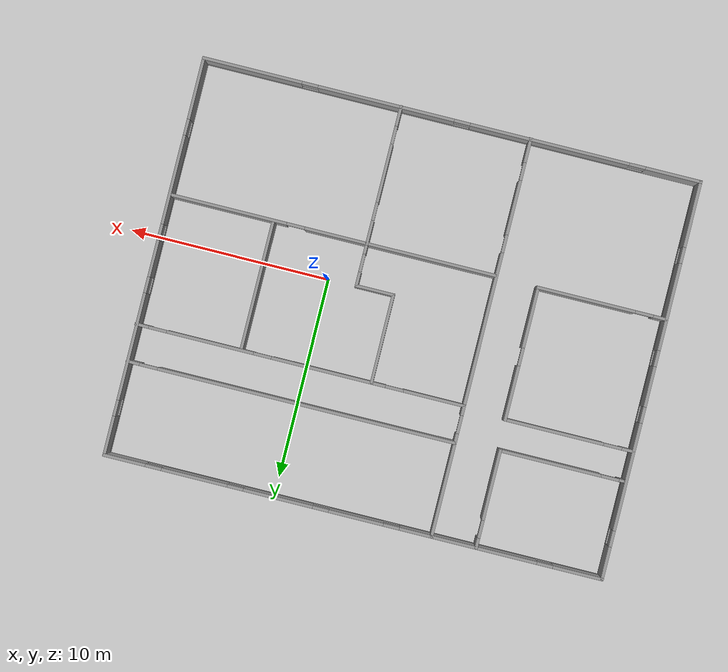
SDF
<sdf version="1.4">
 <world name="default">
  <physics type="ode">
   <gravity>0 0 -9.81</gravity>
   <ode>
    <solver><type>quick</type><iters>20</iters><sor>1.0</sor></solver>
    <constraints>
     <cfm>0.0</cfm>
     <erp>0.2</erp>
     <contact_max_correcting_vel>100.0</contact_max_correcting_vel>
     <contact_surface_layer>0.0</contact_surface_layer>
    </constraints>
   </ode>
   <real_time_update_rate>1000</real_time_update_rate>
   <max_step_size>0.001</max_step_size>
  </physics>
  <light name="sun" type="directional">
   <pose>0 0 10 0 -0 0</pose>
   <diffuse>0.8 0.8 0.8 1</diffuse>
   <specular>0.2 0.2 0.2 1</specular>
   <attenuation>
    <range>1000</range>
    <constant>0.9</constant>
    <linear>0.01</linear>
    <quadratic>0.001</quadratic>
   </attenuation>
   <direction>-0.5 0.1 -0.9</direction>
  </light>
  <model name="ground_plane">
   <static>1</static>
   <link name="link">
    <collision name="collision">
     <geometry><plane><normal>0 0 1</normal><size>100 100</size></plane></geometry>
     <surface><friction><ode><mu>100</mu><mu2>50</mu2></ode></friction></surface>
    </collision>
    <visual name="visual">
     <cast_shadows>0</cast_shadows>
     <geometry><plane><normal>0 0 1</normal><size>100 100</size></plane></geometry>
     <material>
      <script><uri>file://media/materials/scripts/gazebo.material</uri><name>Gazebo/Grey</name></script>
     </material>
    </visual>
    <velocity_decay><linear>0</linear><angular>0</angular></velocity_decay>
   </link>
  </model>
  <scene><ambient>0.4 0.4 0.4 1</ambient><background>0.7 0.7 0.7 1</background><shadows>1</shadows></scene>
  <spherical_coordinates>
   <surface_model>EARTH_WGS84</surface_model>
   <latitude_deg>0</latitude_deg>
   <longitude_deg>0</longitude_deg>
   <elevation>0</elevation>
   <heading_deg>0</heading_deg>
  </spherical_coordinates>
  <model name="RoomWorld">
   <pose>-4 1 0 0 -0 0</pose>
   <link name="Wall_12">
    <pose>-0.015924 -9.9164 0 0 -0 0</pose>
    <visual name="Wall_12_Visual_0">
     <pose>-11.0832 0 1.25 0 -0 0</pose>
     <geometry><box><size>2.83352 0.15 2.5</size></box></geometry>
     <material>
      <script><uri>file://media/materials/scripts/gazebo.material</uri><name>Gazebo/Grey</name></script>
      <ambient>1 1 1 1</ambient>
     </material>
    </visual>
    <collision name="Wall_12_Collision_0">
     <geometry><box><size>2.83352 0.15 2.5</size></box></geometry>
     <pose>-11.0832 0 1.25 0 -0 0</pose>
    </collision>
    <visual name="Wall_12_Visual_1">
     <pose>1.41676 0 0.25 0 -0 0</pose>
     <geometry><box><size>22.1665 0.15 0.5</size></box></geometry>
     <material>
      <script><uri>file://media/materials/scripts/gazebo.material</uri><name>Gazebo/Grey</name></script>
      <ambient>1 1 1 1</ambient>
     </material>
    </visual>
    <collision name="Wall_12_Collision_1">
     <geometry><box><size>22.1665 0.15 0.5</size></box></geometry>
     <pose>1.41676 0 0.25 0 -0 0</pose>
    </collision>
    <visual name="Wall_12_Visual_2">
     <pose>-4.88323 0 1.5 0 -0 0</pose>
     <geometry><box><size>7.9665 0.15 2</size></box></geometry>
     <material>
      <script><uri>file://media/materials/scripts/gazebo.material</uri><name>Gazebo/Grey</name></script>
      <ambient>1 1 1 1</ambient>
     </material>
    </visual>
    <collision name="Wall_12_Collision_2">
     <geometry><box><size>7.9665 0.15 2</size></box></geometry>
     <pose>-4.88323 0 1.5 0 -0 0</pose>
    </collision>
    <visual name="Wall_12_Visual_3">
     <pose>3.30501 0 1.5 0 -0 0</pose>
     <geometry><box><size>6.80997 0.15 2</size></box></geometry>
     <material>
      <script><uri>file://media/materials/scripts/gazebo.material</uri><name>Gazebo/Grey</name></script>
      <ambient>1 1 1 1</ambient>
     </material>
    </visual>
    <collision name="Wall_12_Collision_3">
     <geometry><box><size>6.80997 0.15 2</size></box></geometry>
     <pose>3.30501 0 1.5 0 -0 0</pose>
    </collision>
    <visual name="Wall_12_Visual_4">
     <pose>10.005 0 1.5 0 -0 0</pose>
     <geometry><box><size>4.99001 0.15 2</size></box></geometry>
     <material>
      <script><uri>file://media/materials/scripts/gazebo.material</uri><name>Gazebo/Grey</name></script>
      <ambient>1 1 1 1</ambient>
     </material>
    </visual>
    <collision name="Wall_12_Collision_4">
     <geometry><box><size>4.99001 0.15 2</size></box></geometry>
     <pose>10.005 0 1.5 0 -0 0</pose>
    </collision>
    <visual name="Wall_12_Visual_5">
     <pose>-9.26648 0 1.9 0 -0 0</pose>
     <geometry><box><size>0.8 0.15 1.2</size></box></geometry>
     <material>
      <script><uri>file://media/materials/scripts/gazebo.material</uri><name>Gazebo/Grey</name></script>
      <ambient>1 1 1 1</ambient>
     </material>
    </visual>
    <collision name="Wall_12_Collision_5">
     <geometry><box><size>0.8 0.15 1.2</size></box></geometry>
     <pose>-9.26648 0 1.9 0 -0 0</pose>
    </collision>
    <visual name="Wall_12_Visual_6">
     <pose>-0.499978 0 1.9 0 -0 0</pose>
     <geometry><box><size>0.8 0.15 1.2</size></box></geometry>
     <material>
      <script><uri>file://media/materials/scripts/gazebo.material</uri><name>Gazebo/Grey</name></script>
      <ambient>1 1 1 1</ambient>
     </material>
    </visual>
    <collision name="Wall_12_Collision_6">
     <geometry><box><size>0.8 0.15 1.2</size></box></geometry>
     <pose>-0.499978 0 1.9 0 -0 0</pose>
    </collision>
    <visual name="Wall_12_Visual_7">
     <pose>7.10999 0 1.9 0 -0 0</pose>
     <geometry><box><size>0.8 0.15 1.2</size></box></geometry>
     <material>
      <script><uri>file://media/materials/scripts/gazebo.material</uri><name>Gazebo/Grey</name></script>
      <ambient>1 1 1 1</ambient>
     </material>
    </visual>
    <collision name="Wall_12_Collision_7">
     <geometry><box><size>0.8 0.15 1.2</size></box></geometry>
     <pose>7.10999 0 1.9 0 -0 0</pose>
    </collision>
    <velocity_decay><linear>0</linear><angular>0</angular></velocity_decay>
   </link>
   <link name="Wall_13">
    <pose>12.4091 0.008604 0 0 -0 1.5708</pose>
    <visual name="Wall_13_Visual_0">
     <pose>-8.43232 0 1.25 0 -0 0</pose>
     <geometry><box><size>3.13536 0.15 2.5</size></box></geometry>
     <material>
      <script><uri>file://media/materials/scripts/gazebo.material</uri><name>Gazebo/Grey</name></script>
      <ambient>1 1 1 1</ambient>
     </material>
    </visual>
    <collision name="Wall_13_Collision_0">
     <geometry><box><size>3.13536 0.15 2.5</size></box></geometry>
     <pose>-8.43232 0 1.25 0 -0 0</pose>
    </collision>
    <visual name="Wall_13_Visual_1">
     <pose>1.56768 0 0.25 0 -0 0</pose>
     <geometry><box><size>16.8646 0.15 0.5</size></box></geometry>
     <material>
      <script><uri>file://media/materials/scripts/gazebo.material</uri><name>Gazebo/Grey</name></script>
      <ambient>1 1 1 1</ambient>
     </material>
    </visual>
    <collision name="Wall_13_Collision_1">
     <geometry><box><size>16.8646 0.15 0.5</size></box></geometry>
     <pose>1.56768 0 0.25 0 -0 0</pose>
    </collision>
    <visual name="Wall_13_Visual_2">
     <pose>-3.83932 0 1.5 0 -0 0</pose>
     <geometry><box><size>4.45065 0.15 2</size></box></geometry>
     <material>
      <script><uri>file://media/materials/scripts/gazebo.material</uri><name>Gazebo/Grey</name></script>
      <ambient>1 1 1 1</ambient>
     </material>
    </visual>
    <collision name="Wall_13_Collision_2">
     <geometry><box><size>4.45065 0.15 2</size></box></geometry>
     <pose>-3.83932 0 1.5 0 -0 0</pose>
    </collision>
    <visual name="Wall_13_Visual_3">
     <pose>0.104448 0 1.5 0 -0 0</pose>
     <geometry><box><size>1.83689 0.15 2</size></box></geometry>
     <material>
      <script><uri>file://media/materials/scripts/gazebo.material</uri><name>Gazebo/Grey</name></script>
      <ambient>1 1 1 1</ambient>
     </material>
    </visual>
    <collision name="Wall_13_Collision_3">
     <geometry><box><size>1.83689 0.15 2</size></box></geometry>
     <pose>0.104448 0 1.5 0 -0 0</pose>
    </collision>
    <visual name="Wall_13_Visual_4">
     <pose>4.49926 0 1.5 0 -0 0</pose>
     <geometry><box><size>5.35274 0.15 2</size></box></geometry>
     <material>
      <script><uri>file://media/materials/scripts/gazebo.material</uri><name>Gazebo/Grey</name></script>
      <ambient>1 1 1 1</ambient>
     </material>
    </visual>
    <collision name="Wall_13_Collision_4">
     <geometry><box><size>5.35274 0.15 2</size></box></geometry>
     <pose>4.49926 0 1.5 0 -0 0</pose>
    </collision>
    <visual name="Wall_13_Visual_5">
     <pose>8.98782 0 1.5 0 -0 0</pose>
     <geometry><box><size>2.02437 0.15 2</size></box></geometry>
     <material>
      <script><uri>file://media/materials/scripts/gazebo.material</uri><name>Gazebo/Grey</name></script>
      <ambient>1 1 1 1</ambient>
     </material>
    </visual>
    <collision name="Wall_13_Collision_5">
     <geometry><box><size>2.02437 0.15 2</size></box></geometry>
     <pose>8.98782 0 1.5 0 -0 0</pose>
    </collision>
    <visual name="Wall_13_Visual_6">
     <pose>-6.46464 0 1.9 0 -0 0</pose>
     <geometry><box><size>0.8 0.15 1.2</size></box></geometry>
     <material>
      <script><uri>file://media/materials/scripts/gazebo.material</uri><name>Gazebo/Grey</name></script>
      <ambient>1 1 1 1</ambient>
     </material>
    </visual>
    <collision name="Wall_13_Collision_6">
     <geometry><box><size>0.8 0.15 1.2</size></box></geometry>
     <pose>-6.46464 0 1.9 0 -0 0</pose>
    </collision>
    <visual name="Wall_13_Visual_7">
     <pose>-1.214 0 1.9 0 -0 0</pose>
     <geometry><box><size>0.8 0.15 1.2</size></box></geometry>
     <material>
      <script><uri>file://media/materials/scripts/gazebo.material</uri><name>Gazebo/Grey</name></script>
      <ambient>1 1 1 1</ambient>
     </material>
    </visual>
    <collision name="Wall_13_Collision_7">
     <geometry><box><size>0.8 0.15 1.2</size></box></geometry>
     <pose>-1.214 0 1.9 0 -0 0</pose>
    </collision>
    <visual name="Wall_13_Visual_8">
     <pose>1.42289 0 1.9 0 -0 0</pose>
     <geometry><box><size>0.8 0.15 1.2</size></box></geometry>
     <material>
      <script><uri>file://media/materials/scripts/gazebo.material</uri><name>Gazebo/Grey</name></script>
      <ambient>1 1 1 1</ambient>
     </material>
    </visual>
    <collision name="Wall_13_Collision_8">
     <geometry><box><size>0.8 0.15 1.2</size></box></geometry>
     <pose>1.42289 0 1.9 0 -0 0</pose>
    </collision>
    <visual name="Wall_13_Visual_9">
     <pose>7.57563 0 1.9 0 -0 0</pose>
     <geometry><box><size>0.8 0.15 1.2</size></box></geometry>
     <material>
      <script><uri>file://media/materials/scripts/gazebo.material</uri><name>Gazebo/Grey</name></script>
      <ambient>1 1 1 1</ambient>
     </material>
    </visual>
    <collision name="Wall_13_Collision_9">
     <geometry><box><size>0.8 0.15 1.2</size></box></geometry>
     <pose>7.57563 0 1.9 0 -0 0</pose>
    </collision>
    <velocity_decay><linear>0</linear><angular>0</angular></velocity_decay>
   </link>
   <link name="Wall_14">
    <pose>-0.015924 9.9336 0 0 -0 3.14159</pose>
    <visual name="Wall_14_Visual_0">
     <pose>-11.4391 0 1.25 0 -0 0</pose>
     <geometry><box><size>2.12181 0.15 2.5</size></box></geometry>
     <material>
      <script><uri>file://media/materials/scripts/gazebo.material</uri><name>Gazebo/Grey</name></script>
      <ambient>1 1 1 1</ambient>
     </material>
    </visual>
    <collision name="Wall_14_Collision_0">
     <geometry><box><size>2.12181 0.15 2.5</size></box></geometry>
     <pose>-11.4391 0 1.25 0 -0 0</pose>
    </collision>
    <visual name="Wall_14_Visual_1">
     <pose>1.06091 0 0.25 0 -0 0</pose>
     <geometry><box><size>22.8782 0.15 0.5</size></box></geometry>
     <material>
      <script><uri>file://media/materials/scripts/gazebo.material</uri><name>Gazebo/Grey</name></script>
      <ambient>1 1 1 1</ambient>
     </material>
    </visual>
    <collision name="Wall_14_Collision_1">
     <geometry><box><size>22.8782 0.15 0.5</size></box></geometry>
     <pose>1.06091 0 0.25 0 -0 0</pose>
    </collision>
    <visual name="Wall_14_Visual_2">
     <pose>-7.93113 0 1.5 0 -0 0</pose>
     <geometry><box><size>3.29412 0.15 2</size></box></geometry>
     <material>
      <script><uri>file://media/materials/scripts/gazebo.material</uri><name>Gazebo/Grey</name></script>
      <ambient>1 1 1 1</ambient>
     </material>
    </visual>
    <collision name="Wall_14_Collision_2">
     <geometry><box><size>3.29412 0.15 2</size></box></geometry>
     <pose>-7.93113 0 1.5 0 -0 0</pose>
    </collision>
    <visual name="Wall_14_Visual_3">
     <pose>-3.75605 0 1.5 0 -0 0</pose>
     <geometry><box><size>3.45603 0.15 2</size></box></geometry>
     <material>
      <script><uri>file://media/materials/scripts/gazebo.material</uri><name>Gazebo/Grey</name></script>
      <ambient>1 1 1 1</ambient>
     </material>
    </visual>
    <collision name="Wall_14_Collision_3">
     <geometry><box><size>3.45603 0.15 2</size></box></geometry>
     <pose>-3.75605 0 1.5 0 -0 0</pose>
    </collision>
    <visual name="Wall_14_Visual_4">
     <pose>0.141454 0 1.5 0 -0 0</pose>
     <geometry><box><size>2.73898 0.15 2</size></box></geometry>
     <material>
      <script><uri>file://media/materials/scripts/gazebo.material</uri><name>Gazebo/Grey</name></script>
      <ambient>1 1 1 1</ambient>
     </material>
    </visual>
    <collision name="Wall_14_Collision_4">
     <geometry><box><size>2.73898 0.15 2</size></box></geometry>
     <pose>0.141454 0 1.5 0 -0 0</pose>
    </collision>
    <visual name="Wall_14_Visual_5">
     <pose>5.73906 0 1.5 0 -0 0</pose>
     <geometry><box><size>6.85623 0.15 2</size></box></geometry>
     <material>
      <script><uri>file://media/materials/scripts/gazebo.material</uri><name>Gazebo/Grey</name></script>
      <ambient>1 1 1 1</ambient>
     </material>
    </visual>
    <collision name="Wall_14_Collision_5">
     <geometry><box><size>6.85623 0.15 2</size></box></geometry>
     <pose>5.73906 0 1.5 0 -0 0</pose>
    </collision>
    <visual name="Wall_14_Visual_6">
     <pose>11.2336 0 1.5 0 -0 0</pose>
     <geometry><box><size>2.53282 0.15 2</size></box></geometry>
     <material>
      <script><uri>file://media/materials/scripts/gazebo.material</uri><name>Gazebo/Grey</name></script>
      <ambient>1 1 1 1</ambient>
     </material>
    </visual>
    <collision name="Wall_14_Collision_6">
     <geometry><box><size>2.53282 0.15 2</size></box></geometry>
     <pose>11.2336 0 1.5 0 -0 0</pose>
    </collision>
    <visual name="Wall_14_Visual_7">
     <pose>-9.97819 0 1.9 0 -0 0</pose>
     <geometry><box><size>0.8 0.15 1.2</size></box></geometry>
     <material>
      <script><uri>file://media/materials/scripts/gazebo.material</uri><name>Gazebo/Grey</name></script>
      <ambient>1 1 1 1</ambient>
     </material>
    </visual>
    <collision name="Wall_14_Collision_7">
     <geometry><box><size>0.8 0.15 1.2</size></box></geometry>
     <pose>-9.97819 0 1.9 0 -0 0</pose>
    </collision>
    <visual name="Wall_14_Visual_8">
     <pose>-5.88407 0 1.9 0 -0 0</pose>
     <geometry><box><size>0.8 0.15 1.2</size></box></geometry>
     <material>
      <script><uri>file://media/materials/scripts/gazebo.material</uri><name>Gazebo/Grey</name></script>
      <ambient>1 1 1 1</ambient>
     </material>
    </visual>
    <collision name="Wall_14_Collision_8">
     <geometry><box><size>0.8 0.15 1.2</size></box></geometry>
     <pose>-5.88407 0 1.9 0 -0 0</pose>
    </collision>
    <visual name="Wall_14_Visual_9">
     <pose>-1.62804 0 1.9 0 -0 0</pose>
     <geometry><box><size>0.8 0.15 1.2</size></box></geometry>
     <material>
      <script><uri>file://media/materials/scripts/gazebo.material</uri><name>Gazebo/Grey</name></script>
      <ambient>1 1 1 1</ambient>
     </material>
    </visual>
    <collision name="Wall_14_Collision_9">
     <geometry><box><size>0.8 0.15 1.2</size></box></geometry>
     <pose>-1.62804 0 1.9 0 -0 0</pose>
    </collision>
    <visual name="Wall_14_Visual_10">
     <pose>1.91094 0 1.9 0 -0 0</pose>
     <geometry><box><size>0.8 0.15 1.2</size></box></geometry>
     <material>
      <script><uri>file://media/materials/scripts/gazebo.material</uri><name>Gazebo/Grey</name></script>
      <ambient>1 1 1 1</ambient>
     </material>
    </visual>
    <collision name="Wall_14_Collision_10">
     <geometry><box><size>0.8 0.15 1.2</size></box></geometry>
     <pose>1.91094 0 1.9 0 -0 0</pose>
    </collision>
    <visual name="Wall_14_Visual_11">
     <pose>9.56718 0 1.9 0 -0 0</pose>
     <geometry><box><size>0.8 0.15 1.2</size></box></geometry>
     <material>
      <script><uri>file://media/materials/scripts/gazebo.material</uri><name>Gazebo/Grey</name></script>
      <ambient>1 1 1 1</ambient>
     </material>
    </visual>
    <collision name="Wall_14_Collision_11">
     <geometry><box><size>0.8 0.15 1.2</size></box></geometry>
     <pose>9.56718 0 1.9 0 -0 0</pose>
    </collision>
    <velocity_decay><linear>0</linear><angular>0</angular></velocity_decay>
   </link>
   <link name="Wall_15">
    <pose>-12.4409 0.008604 0 0 0 -1.5708</pose>
    <visual name="Wall_15_Visual_0">
     <pose>-9.14973 0 1.25 0 -0 0</pose>
     <geometry><box><size>1.70054 0.15 2.5</size></box></geometry>
     <material>
      <script><uri>file://media/materials/scripts/gazebo.material</uri><name>Gazebo/Grey</name></script>
      <ambient>1 1 1 1</ambient>
     </material>
    </visual>
    <collision name="Wall_15_Collision_0">
     <geometry><box><size>1.70054 0.15 2.5</size></box></geometry>
     <pose>-9.14973 0 1.25 0 -0 0</pose>
    </collision>
    <visual name="Wall_15_Visual_1">
     <pose>0.850269 0 0.25 0 -0 0</pose>
     <geometry><box><size>18.2995 0.15 0.5</size></box></geometry>
     <material>
      <script><uri>file://media/materials/scripts/gazebo.material</uri><name>Gazebo/Grey</name></script>
      <ambient>1 1 1 1</ambient>
     </material>
    </visual>
    <collision name="Wall_15_Collision_1">
     <geometry><box><size>18.2995 0.15 0.5</size></box></geometry>
     <pose>0.850269 0 0.25 0 -0 0</pose>
    </collision>
    <visual name="Wall_15_Visual_2">
     <pose>-4.81153 0 1.5 0 -0 0</pose>
     <geometry><box><size>5.37587 0.15 2</size></box></geometry>
     <material>
      <script><uri>file://media/materials/scripts/gazebo.material</uri><name>Gazebo/Grey</name></script>
      <ambient>1 1 1 1</ambient>
     </material>
    </visual>
    <collision name="Wall_15_Collision_2">
     <geometry><box><size>5.37587 0.15 2</size></box></geometry>
     <pose>-4.81153 0 1.5 0 -0 0</pose>
    </collision>
    <visual name="Wall_15_Visual_3">
     <pose>-0.312623 0 1.5 0 -0 0</pose>
     <geometry><box><size>2.02193 0.15 2</size></box></geometry>
     <material>
      <script><uri>file://media/materials/scripts/gazebo.material</uri><name>Gazebo/Grey</name></script>
      <ambient>1 1 1 1</ambient>
     </material>
    </visual>
    <collision name="Wall_15_Collision_3">
     <geometry><box><size>2.02193 0.15 2</size></box></geometry>
     <pose>-0.312623 0 1.5 0 -0 0</pose>
    </collision>
    <visual name="Wall_15_Visual_4">
     <pose>3.67741 0 1.5 0 -0 0</pose>
     <geometry><box><size>4.35813 0.15 2</size></box></geometry>
     <material>
      <script><uri>file://media/materials/scripts/gazebo.material</uri><name>Gazebo/Grey</name></script>
      <ambient>1 1 1 1</ambient>
     </material>
    </visual>
    <collision name="Wall_15_Collision_4">
     <geometry><box><size>4.35813 0.15 2</size></box></geometry>
     <pose>3.67741 0 1.5 0 -0 0</pose>
    </collision>
    <visual name="Wall_15_Visual_5">
     <pose>8.32823 0 1.5 0 -0 0</pose>
     <geometry><box><size>3.34353 0.15 2</size></box></geometry>
     <material>
      <script><uri>file://media/materials/scripts/gazebo.material</uri><name>Gazebo/Grey</name></script>
      <ambient>1 1 1 1</ambient>
     </material>
    </visual>
    <collision name="Wall_15_Collision_5">
     <geometry><box><size>3.34353 0.15 2</size></box></geometry>
     <pose>8.32823 0 1.5 0 -0 0</pose>
    </collision>
    <visual name="Wall_15_Visual_6">
     <pose>-7.89946 0 1.9 0 -0 0</pose>
     <geometry><box><size>0.8 0.15 1.2</size></box></geometry>
     <material>
      <script><uri>file://media/materials/scripts/gazebo.material</uri><name>Gazebo/Grey</name></script>
      <ambient>1 1 1 1</ambient>
     </material>
    </visual>
    <collision name="Wall_15_Collision_6">
     <geometry><box><size>0.8 0.15 1.2</size></box></geometry>
     <pose>-7.89946 0 1.9 0 -0 0</pose>
    </collision>
    <visual name="Wall_15_Visual_7">
     <pose>-1.72359 0 1.9 0 -0 0</pose>
     <geometry><box><size>0.8 0.15 1.2</size></box></geometry>
     <material>
      <script><uri>file://media/materials/scripts/gazebo.material</uri><name>Gazebo/Grey</name></script>
      <ambient>1 1 1 1</ambient>
     </material>
    </visual>
    <collision name="Wall_15_Collision_7">
     <geometry><box><size>0.8 0.15 1.2</size></box></geometry>
     <pose>-1.72359 0 1.9 0 -0 0</pose>
    </collision>
    <visual name="Wall_15_Visual_8">
     <pose>1.09834 0 1.9 0 -0 0</pose>
     <geometry><box><size>0.8 0.15 1.2</size></box></geometry>
     <material>
      <script><uri>file://media/materials/scripts/gazebo.material</uri><name>Gazebo/Grey</name></script>
      <ambient>1 1 1 1</ambient>
     </material>
    </visual>
    <collision name="Wall_15_Collision_8">
     <geometry><box><size>0.8 0.15 1.2</size></box></geometry>
     <pose>1.09834 0 1.9 0 -0 0</pose>
    </collision>
    <visual name="Wall_15_Visual_9">
     <pose>6.25647 0 1.9 0 -0 0</pose>
     <geometry><box><size>0.8 0.15 1.2</size></box></geometry>
     <material>
      <script><uri>file://media/materials/scripts/gazebo.material</uri><name>Gazebo/Grey</name></script>
      <ambient>1 1 1 1</ambient>
     </material>
    </visual>
    <collision name="Wall_15_Collision_9">
     <geometry><box><size>0.8 0.15 1.2</size></box></geometry>
     <pose>6.25647 0 1.9 0 -0 0</pose>
    </collision>
    <velocity_decay><linear>0</linear><angular>0</angular></velocity_decay>
   </link>
   <link name="Wall_17">
    <pose>-9.20541 3.56611 0 0 -0 0</pose>
    <visual name="Wall_17_Visual_0">
     <pose>-2.94296 0 1.25 0 -0 0</pose>
     <geometry><box><size>0.614084 0.15 2.5</size></box></geometry>
     <material>
      <script><uri>file://media/materials/scripts/gazebo.material</uri><name>Gazebo/Grey</name></script>
      <ambient>1 1 1 1</ambient>
     </material>
    </visual>
    <collision name="Wall_17_Collision_0">
     <geometry><box><size>0.614084 0.15 2.5</size></box></geometry>
     <pose>-2.94296 0 1.25 0 -0 0</pose>
    </collision>
    <visual name="Wall_17_Visual_1">
     <pose>0.757042 0 1.25 0 -0 0</pose>
     <geometry><box><size>4.98592 0.15 2.5</size></box></geometry>
     <material>
      <script><uri>file://media/materials/scripts/gazebo.material</uri><name>Gazebo/Grey</name></script>
      <ambient>1 1 1 1</ambient>
     </material>
    </visual>
    <collision name="Wall_17_Collision_1">
     <geometry><box><size>4.98592 0.15 2.5</size></box></geometry>
     <pose>0.757042 0 1.25 0 -0 0</pose>
    </collision>
    <visual name="Wall_17_Visual_2">
     <pose>-2.18592 0 2.25 0 -0 0</pose>
     <geometry><box><size>0.9 0.15 0.5</size></box></geometry>
     <material>
      <script><uri>file://media/materials/scripts/gazebo.material</uri><name>Gazebo/Grey</name></script>
      <ambient>1 1 1 1</ambient>
     </material>
    </visual>
    <collision name="Wall_17_Collision_2">
     <geometry><box><size>0.9 0.15 0.5</size></box></geometry>
     <pose>-2.18592 0 2.25 0 -0 0</pose>
    </collision>
    <velocity_decay><linear>0</linear><angular>0</angular></velocity_decay>
   </link>
   <link name="Wall_18">
    <pose>-6.03041 0.266112 0 0 0 -1.5708</pose>
    <visual name="Wall_18_Visual_0">
     <pose>-1.99435 0 1.25 0 -0 0</pose>
     <geometry><box><size>2.7613 0.15 2.5</size></box></geometry>
     <material>
      <script><uri>file://media/materials/scripts/gazebo.material</uri><name>Gazebo/Grey</name></script>
      <ambient>1 1 1 1</ambient>
     </material>
    </visual>
    <collision name="Wall_18_Collision_0">
     <geometry><box><size>2.7613 0.15 2.5</size></box></geometry>
     <pose>-1.99435 0 1.25 0 -0 0</pose>
    </collision>
    <visual name="Wall_18_Visual_1">
     <pose>1.83065 0 1.25 0 -0 0</pose>
     <geometry><box><size>3.0887 0.15 2.5</size></box></geometry>
     <material>
      <script><uri>file://media/materials/scripts/gazebo.material</uri><name>Gazebo/Grey</name></script>
      <ambient>1 1 1 1</ambient>
     </material>
    </visual>
    <collision name="Wall_18_Collision_1">
     <geometry><box><size>3.0887 0.15 2.5</size></box></geometry>
     <pose>1.83065 0 1.25 0 -0 0</pose>
    </collision>
    <visual name="Wall_18_Visual_2">
     <pose>-0.163703 0 2.25 0 -0 0</pose>
     <geometry><box><size>0.9 0.15 0.5</size></box></geometry>
     <material>
      <script><uri>file://media/materials/scripts/gazebo.material</uri><name>Gazebo/Grey</name></script>
      <ambient>1 1 1 1</ambient>
     </material>
    </visual>
    <collision name="Wall_18_Collision_2">
     <geometry><box><size>0.9 0.15 0.5</size></box></geometry>
     <pose>-0.163703 0 2.25 0 -0 0</pose>
    </collision>
    <velocity_decay><linear>0</linear><angular>0</angular></velocity_decay>
   </link>
   <link name="Wall_19">
    <pose>-9.20541 -3.03389 0 0 -0 3.14159</pose>
    <visual name="Wall_19_Visual_0">
     <pose>-0.787212 0 1.25 0 -0 0</pose>
     <geometry><box><size>4.92558 0.15 2.5</size></box></geometry>
     <material>
      <script><uri>file://media/materials/scripts/gazebo.material</uri><name>Gazebo/Grey</name></script>
      <ambient>1 1 1 1</ambient>
     </material>
    </visual>
    <collision name="Wall_19_Collision_0">
     <geometry><box><size>4.92558 0.15 2.5</size></box></geometry>
     <pose>-0.787212 0 1.25 0 -0 0</pose>
    </collision>
    <visual name="Wall_19_Visual_1">
     <pose>2.91279 0 1.25 0 -0 0</pose>
     <geometry><box><size>0.674425 0.15 2.5</size></box></geometry>
     <material>
      <script><uri>file://media/materials/scripts/gazebo.material</uri><name>Gazebo/Grey</name></script>
      <ambient>1 1 1 1</ambient>
     </material>
    </visual>
    <collision name="Wall_19_Collision_1">
     <geometry><box><size>0.674425 0.15 2.5</size></box></geometry>
     <pose>2.91279 0 1.25 0 -0 0</pose>
    </collision>
    <visual name="Wall_19_Visual_2">
     <pose>2.12557 0 2.25 0 -0 0</pose>
     <geometry><box><size>0.9 0.15 0.5</size></box></geometry>
     <material>
      <script><uri>file://media/materials/scripts/gazebo.material</uri><name>Gazebo/Grey</name></script>
      <ambient>1 1 1 1</ambient>
     </material>
    </visual>
    <collision name="Wall_19_Collision_2">
     <geometry><box><size>0.9 0.15 0.5</size></box></geometry>
     <pose>2.12557 0 2.25 0 -0 0</pose>
    </collision>
    <velocity_decay><linear>0</linear><angular>0</angular></velocity_decay>
   </link>
   <link name="Wall_21">
    <pose>-6.15827 7.50203 0 0 0 -1.5708</pose>
    <visual name="Wall_21_Visual_0">
     <pose>-2.22308 0 1.25 0 -0 0</pose>
     <geometry><box><size>0.553832 0.15 2.5</size></box></geometry>
     <material>
      <script><uri>file://media/materials/scripts/gazebo.material</uri><name>Gazebo/Grey</name></script>
      <ambient>1 1 1 1</ambient>
     </material>
    </visual>
    <collision name="Wall_21_Collision_0">
     <geometry><box><size>0.553832 0.15 2.5</size></box></geometry>
     <pose>-2.22308 0 1.25 0 -0 0</pose>
    </collision>
    <visual name="Wall_21_Visual_1">
     <pose>0.726916 0 1.25 0 -0 0</pose>
     <geometry><box><size>3.54617 0.15 2.5</size></box></geometry>
     <material>
      <script><uri>file://media/materials/scripts/gazebo.material</uri><name>Gazebo/Grey</name></script>
      <ambient>1 1 1 1</ambient>
     </material>
    </visual>
    <collision name="Wall_21_Collision_1">
     <geometry><box><size>3.54617 0.15 2.5</size></box></geometry>
     <pose>0.726916 0 1.25 0 -0 0</pose>
    </collision>
    <visual name="Wall_21_Visual_2">
     <pose>-1.49617 0 2.25 0 -0 0</pose>
     <geometry><box><size>0.9 0.15 0.5</size></box></geometry>
     <material>
      <script><uri>file://media/materials/scripts/gazebo.material</uri><name>Gazebo/Grey</name></script>
      <ambient>1 1 1 1</ambient>
     </material>
    </visual>
    <collision name="Wall_21_Collision_2">
     <geometry><box><size>0.9 0.15 0.5</size></box></geometry>
     <pose>-1.49617 0 2.25 0 -0 0</pose>
    </collision>
    <velocity_decay><linear>0</linear><angular>0</angular></velocity_decay>
   </link>
   <link name="Wall_22">
    <pose>-9.20828 5.07703 0 0 -0 3.14159</pose>
    <visual name="Wall_22_Visual_0">
     <pose>-0.575294 0 1.25 0 -0 0</pose>
     <geometry><box><size>5.09941 0.15 2.5</size></box></geometry>
     <material>
      <script><uri>file://media/materials/scripts/gazebo.material</uri><name>Gazebo/Grey</name></script>
      <ambient>1 1 1 1</ambient>
     </material>
    </visual>
    <collision name="Wall_22_Collision_0">
     <geometry><box><size>5.09941 0.15 2.5</size></box></geometry>
     <pose>-0.575294 0 1.25 0 -0 0</pose>
    </collision>
    <visual name="Wall_22_Visual_1">
     <pose>2.99971 0 1.25 0 -0 0</pose>
     <geometry><box><size>0.250588 0.15 2.5</size></box></geometry>
     <material>
      <script><uri>file://media/materials/scripts/gazebo.material</uri><name>Gazebo/Grey</name></script>
      <ambient>1 1 1 1</ambient>
     </material>
    </visual>
    <collision name="Wall_22_Collision_1">
     <geometry><box><size>0.250588 0.15 2.5</size></box></geometry>
     <pose>2.99971 0 1.25 0 -0 0</pose>
    </collision>
    <visual name="Wall_22_Visual_2">
     <pose>2.42441 0 2.25 0 -0 0</pose>
     <geometry><box><size>0.9 0.15 0.5</size></box></geometry>
     <material>
      <script><uri>file://media/materials/scripts/gazebo.material</uri><name>Gazebo/Grey</name></script>
      <ambient>1 1 1 1</ambient>
     </material>
    </visual>
    <collision name="Wall_22_Collision_2">
     <geometry><box><size>0.9 0.15 0.5</size></box></geometry>
     <pose>2.42441 0 2.25 0 -0 0</pose>
    </collision>
    <velocity_decay><linear>0</linear><angular>0</angular></velocity_decay>
   </link>
   <link name="Wall_24">
    <collision name="Wall_24_Collision">
     <geometry><box><size>0.25 0.15 2.5</size></box></geometry>
     <pose>0 0 1.25 0 -0 0</pose>
    </collision>
    <visual name="Wall_24_Visual">
     <pose>0 0 1.25 0 -0 0</pose>
     <geometry><box><size>0.25 0.15 2.5</size></box></geometry>
     <material>
      <script><uri>file://media/materials/scripts/gazebo.material</uri><name>Gazebo/Grey</name></script>
      <ambient>1 1 1 1</ambient>
     </material>
    </visual>
    <pose>-12.3083 5.07703 0 0 -0 3.14159</pose>
    <velocity_decay><linear>0</linear><angular>0</angular></velocity_decay>
   </link>
   <link name="Wall_28">
    <pose>-3.93788 -0.006936 0 0 0 -1.5708</pose>
    <visual name="Wall_28_Visual_0">
     <pose>-7.39439 0 1.25 0 -0 0</pose>
     <geometry><box><size>5.21122 0.15 2.5</size></box></geometry>
     <material>
      <script><uri>file://media/materials/scripts/gazebo.material</uri><name>Gazebo/Grey</name></script>
      <ambient>1 1 1 1</ambient>
     </material>
    </visual>
    <collision name="Wall_28_Collision_0">
     <geometry><box><size>5.21122 0.15 2.5</size></box></geometry>
     <pose>-7.39439 0 1.25 0 -0 0</pose>
    </collision>
    <visual name="Wall_28_Visual_1">
     <pose>0.176712 0 1.25 0 -0 0</pose>
     <geometry><box><size>8.13099 0.15 2.5</size></box></geometry>
     <material>
      <script><uri>file://media/materials/scripts/gazebo.material</uri><name>Gazebo/Grey</name></script>
      <ambient>1 1 1 1</ambient>
     </material>
    </visual>
    <collision name="Wall_28_Collision_1">
     <geometry><box><size>8.13099 0.15 2.5</size></box></geometry>
     <pose>0.176712 0 1.25 0 -0 0</pose>
    </collision>
    <visual name="Wall_28_Visual_2">
     <pose>6.50243 0 1.25 0 -0 0</pose>
     <geometry><box><size>2.72044 0.15 2.5</size></box></geometry>
     <material>
      <script><uri>file://media/materials/scripts/gazebo.material</uri><name>Gazebo/Grey</name></script>
      <ambient>1 1 1 1</ambient>
     </material>
    </visual>
    <collision name="Wall_28_Collision_2">
     <geometry><box><size>2.72044 0.15 2.5</size></box></geometry>
     <pose>6.50243 0 1.25 0 -0 0</pose>
    </collision>
    <visual name="Wall_28_Visual_3">
     <pose>9.38133 0 1.25 0 -0 0</pose>
     <geometry><box><size>1.23735 0.15 2.5</size></box></geometry>
     <material>
      <script><uri>file://media/materials/scripts/gazebo.material</uri><name>Gazebo/Grey</name></script>
      <ambient>1 1 1 1</ambient>
     </material>
    </visual>
    <collision name="Wall_28_Collision_3">
     <geometry><box><size>1.23735 0.15 2.5</size></box></geometry>
     <pose>9.38133 0 1.25 0 -0 0</pose>
    </collision>
    <visual name="Wall_28_Visual_4">
     <pose>-4.33878 0 2.25 0 -0 0</pose>
     <geometry><box><size>0.9 0.15 0.5</size></box></geometry>
     <material>
      <script><uri>file://media/materials/scripts/gazebo.material</uri><name>Gazebo/Grey</name></script>
      <ambient>1 1 1 1</ambient>
     </material>
    </visual>
    <collision name="Wall_28_Collision_4">
     <geometry><box><size>0.9 0.15 0.5</size></box></geometry>
     <pose>-4.33878 0 2.25 0 -0 0</pose>
    </collision>
    <visual name="Wall_28_Visual_5">
     <pose>4.69221 0 2.25 0 -0 0</pose>
     <geometry><box><size>0.9 0.15 0.5</size></box></geometry>
     <material>
      <script><uri>file://media/materials/scripts/gazebo.material</uri><name>Gazebo/Grey</name></script>
      <ambient>1 1 1 1</ambient>
     </material>
    </visual>
    <collision name="Wall_28_Collision_5">
     <geometry><box><size>0.9 0.15 0.5</size></box></geometry>
     <pose>4.69221 0 2.25 0 -0 0</pose>
    </collision>
    <visual name="Wall_28_Visual_6">
     <pose>8.31265 0 2.25 0 -0 0</pose>
     <geometry><box><size>0.9 0.15 0.5</size></box></geometry>
     <material>
      <script><uri>file://media/materials/scripts/gazebo.material</uri><name>Gazebo/Grey</name></script>
      <ambient>1 1 1 1</ambient>
     </material>
    </visual>
    <collision name="Wall_28_Collision_6">
     <geometry><box><size>0.9 0.15 0.5</size></box></geometry>
     <pose>8.31265 0 2.25 0 -0 0</pose>
    </collision>
    <velocity_decay><linear>0</linear><angular>0</angular></velocity_decay>
   </link>
   <link name="Wall_30">
    <pose>4.24581 5.25707 0 0 -0 0</pose>
    <visual name="Wall_30_Visual_0">
     <pose>-0.784286 0 1.25 0 -0 0</pose>
     <geometry><box><size>14.9314 0.15 2.5</size></box></geometry>
     <material>
      <script><uri>file://media/materials/scripts/gazebo.material</uri><name>Gazebo/Grey</name></script>
      <ambient>1 1 1 1</ambient>
     </material>
    </visual>
    <collision name="Wall_30_Collision_0">
     <geometry><box><size>14.9314 0.15 2.5</size></box></geometry>
     <pose>-0.784286 0 1.25 0 -0 0</pose>
    </collision>
    <visual name="Wall_30_Visual_1">
     <pose>7.91571 0 1.25 0 -0 0</pose>
     <geometry><box><size>0.668571 0.15 2.5</size></box></geometry>
     <material>
      <script><uri>file://media/materials/scripts/gazebo.material</uri><name>Gazebo/Grey</name></script>
      <ambient>1 1 1 1</ambient>
     </material>
    </visual>
    <collision name="Wall_30_Collision_1">
     <geometry><box><size>0.668571 0.15 2.5</size></box></geometry>
     <pose>7.91571 0 1.25 0 -0 0</pose>
    </collision>
    <visual name="Wall_30_Visual_2">
     <pose>7.13143 0 2.25 0 -0 0</pose>
     <geometry><box><size>0.9 0.15 0.5</size></box></geometry>
     <material>
      <script><uri>file://media/materials/scripts/gazebo.material</uri><name>Gazebo/Grey</name></script>
      <ambient>1 1 1 1</ambient>
     </material>
    </visual>
    <collision name="Wall_30_Collision_2">
     <geometry><box><size>0.9 0.15 0.5</size></box></geometry>
     <pose>7.13143 0 2.25 0 -0 0</pose>
    </collision>
    <velocity_decay><linear>0</linear><angular>0</angular></velocity_decay>
   </link>
   <link name="Wall_32">
    <pose>4.26593 3.40662 0 0 -0 0</pose>
    <visual name="Wall_32_Visual_0">
     <pose>-6.70773 0 1.25 0 -0 0</pose>
     <geometry><box><size>3.08453 0.15 2.5</size></box></geometry>
     <material>
      <script><uri>file://media/materials/scripts/gazebo.material</uri><name>Gazebo/Grey</name></script>
      <ambient>1 1 1 1</ambient>
     </material>
    </visual>
    <collision name="Wall_32_Collision_0">
     <geometry><box><size>3.08453 0.15 2.5</size></box></geometry>
     <pose>-6.70773 0 1.25 0 -0 0</pose>
    </collision>
    <visual name="Wall_32_Visual_1">
     <pose>-1.41684 0 1.25 0 -0 0</pose>
     <geometry><box><size>5.69725 0.15 2.5</size></box></geometry>
     <material>
      <script><uri>file://media/materials/scripts/gazebo.material</uri><name>Gazebo/Grey</name></script>
      <ambient>1 1 1 1</ambient>
     </material>
    </visual>
    <collision name="Wall_32_Collision_1">
     <geometry><box><size>5.69725 0.15 2.5</size></box></geometry>
     <pose>-1.41684 0 1.25 0 -0 0</pose>
    </collision>
    <visual name="Wall_32_Visual_2">
     <pose>4.49655 0 1.25 0 -0 0</pose>
     <geometry><box><size>4.32953 0.15 2.5</size></box></geometry>
     <material>
      <script><uri>file://media/materials/scripts/gazebo.material</uri><name>Gazebo/Grey</name></script>
      <ambient>1 1 1 1</ambient>
     </material>
    </visual>
    <collision name="Wall_32_Collision_2">
     <geometry><box><size>4.32953 0.15 2.5</size></box></geometry>
     <pose>4.49655 0 1.25 0 -0 0</pose>
    </collision>
    <visual name="Wall_32_Visual_3">
     <pose>7.90566 0 1.25 0 -0 0</pose>
     <geometry><box><size>0.688685 0.15 2.5</size></box></geometry>
     <material>
      <script><uri>file://media/materials/scripts/gazebo.material</uri><name>Gazebo/Grey</name></script>
      <ambient>1 1 1 1</ambient>
     </material>
    </visual>
    <collision name="Wall_32_Collision_3">
     <geometry><box><size>0.688685 0.15 2.5</size></box></geometry>
     <pose>7.90566 0 1.25 0 -0 0</pose>
    </collision>
    <visual name="Wall_32_Visual_4">
     <pose>-4.71547 0 2.25 0 -0 0</pose>
     <geometry><box><size>0.9 0.15 0.5</size></box></geometry>
     <material>
      <script><uri>file://media/materials/scripts/gazebo.material</uri><name>Gazebo/Grey</name></script>
      <ambient>1 1 1 1</ambient>
     </material>
    </visual>
    <collision name="Wall_32_Collision_4">
     <geometry><box><size>0.9 0.15 0.5</size></box></geometry>
     <pose>-4.71547 0 2.25 0 -0 0</pose>
    </collision>
    <visual name="Wall_32_Visual_5">
     <pose>1.88179 0 2.25 0 -0 0</pose>
     <geometry><box><size>0.9 0.15 0.5</size></box></geometry>
     <material>
      <script><uri>file://media/materials/scripts/gazebo.material</uri><name>Gazebo/Grey</name></script>
      <ambient>1 1 1 1</ambient>
     </material>
    </visual>
    <collision name="Wall_32_Collision_5">
     <geometry><box><size>0.9 0.15 0.5</size></box></geometry>
     <pose>1.88179 0 2.25 0 -0 0</pose>
    </collision>
    <visual name="Wall_32_Visual_6">
     <pose>7.11132 0 2.25 0 -0 0</pose>
     <geometry><box><size>0.9 0.15 0.5</size></box></geometry>
     <material>
      <script><uri>file://media/materials/scripts/gazebo.material</uri><name>Gazebo/Grey</name></script>
      <ambient>1 1 1 1</ambient>
     </material>
    </visual>
    <collision name="Wall_32_Collision_6">
     <geometry><box><size>0.9 0.15 0.5</size></box></geometry>
     <pose>7.11132 0 2.25 0 -0 0</pose>
    </collision>
    <velocity_decay><linear>0</linear><angular>0</angular></velocity_decay>
   </link>
   <link name="Wall_34">
    <pose>4.20127 -3.09006 0 0 -0 0</pose>
    <visual name="Wall_34_Visual_0">
     <pose>-3.33439 0 1.25 0 -0 0</pose>
     <geometry><box><size>9.58122 0.15 2.5</size></box></geometry>
     <material>
      <script><uri>file://media/materials/scripts/gazebo.material</uri><name>Gazebo/Grey</name></script>
      <ambient>1 1 1 1</ambient>
     </material>
    </visual>
    <collision name="Wall_34_Collision_0">
     <geometry><box><size>9.58122 0.15 2.5</size></box></geometry>
     <pose>-3.33439 0 1.25 0 -0 0</pose>
    </collision>
    <visual name="Wall_34_Visual_1">
     <pose>5.24061 0 1.25 0 -0 0</pose>
     <geometry><box><size>5.76878 0.15 2.5</size></box></geometry>
     <material>
      <script><uri>file://media/materials/scripts/gazebo.material</uri><name>Gazebo/Grey</name></script>
      <ambient>1 1 1 1</ambient>
     </material>
    </visual>
    <collision name="Wall_34_Collision_1">
     <geometry><box><size>5.76878 0.15 2.5</size></box></geometry>
     <pose>5.24061 0 1.25 0 -0 0</pose>
    </collision>
    <visual name="Wall_34_Visual_2">
     <pose>1.90622 0 2.25 0 -0 0</pose>
     <geometry><box><size>0.9 0.15 0.5</size></box></geometry>
     <material>
      <script><uri>file://media/materials/scripts/gazebo.material</uri><name>Gazebo/Grey</name></script>
      <ambient>1 1 1 1</ambient>
     </material>
    </visual>
    <collision name="Wall_34_Collision_2">
     <geometry><box><size>0.9 0.15 0.5</size></box></geometry>
     <pose>1.90622 0 2.25 0 -0 0</pose>
    </collision>
    <velocity_decay><linear>0</linear><angular>0</angular></velocity_decay>
   </link>
   <link name="Wall_36">
    <collision name="Wall_36_Collision">
     <geometry><box><size>4.5 0.15 2.5</size></box></geometry>
     <pose>0 0 1.25 0 -0 0</pose>
    </collision>
    <visual name="Wall_36_Visual">
     <pose>0 0 1.25 0 -0 0</pose>
     <geometry><box><size>4.5 0.15 2.5</size></box></geometry>
     <material>
      <script><uri>file://media/materials/scripts/gazebo.material</uri><name>Gazebo/Grey</name></script>
      <ambient>1 1 1 1</ambient>
     </material>
    </visual>
    <pose>0.696933 1.1914 0 0 0 -1.5708</pose>
    <velocity_decay><linear>0</linear><angular>0</angular></velocity_decay>
   </link>
   <link name="Wall_37">
    <collision name="Wall_37_Collision">
     <geometry><box><size>2 0.15 2.5</size></box></geometry>
     <pose>0 0 1.25 0 -0 0</pose>
    </collision>
    <visual name="Wall_37_Visual">
     <pose>0 0 1.25 0 -0 0</pose>
     <geometry><box><size>2 0.15 2.5</size></box></geometry>
     <material>
      <script><uri>file://media/materials/scripts/gazebo.material</uri><name>Gazebo/Grey</name></script>
      <ambient>1 1 1 1</ambient>
     </material>
    </visual>
    <pose>1.62193 -0.983603 0 0 -0 0</pose>
    <velocity_decay><linear>0</linear><angular>0</angular></velocity_decay>
   </link>
   <link name="Wall_38">
    <pose>2.54693 -2.0336 0 0 0 -1.5708</pose>
    <visual name="Wall_38_Visual_0">
     <pose>-0.741997 0 1.25 0 -0 0</pose>
     <geometry><box><size>0.766005 0.15 2.5</size></box></geometry>
     <material>
      <script><uri>file://media/materials/scripts/gazebo.material</uri><name>Gazebo/Grey</name></script>
      <ambient>1 1 1 1</ambient>
     </material>
    </visual>
    <collision name="Wall_38_Collision_0">
     <geometry><box><size>0.766005 0.15 2.5</size></box></geometry>
     <pose>-0.741997 0 1.25 0 -0 0</pose>
    </collision>
    <visual name="Wall_38_Visual_1">
     <pose>0.833003 0 1.25 0 -0 0</pose>
     <geometry><box><size>0.583995 0.15 2.5</size></box></geometry>
     <material>
      <script><uri>file://media/materials/scripts/gazebo.material</uri><name>Gazebo/Grey</name></script>
      <ambient>1 1 1 1</ambient>
     </material>
    </visual>
    <collision name="Wall_38_Collision_1">
     <geometry><box><size>0.583995 0.15 2.5</size></box></geometry>
     <pose>0.833003 0 1.25 0 -0 0</pose>
    </collision>
    <visual name="Wall_38_Visual_2">
     <pose>0.091005 0 2.25 0 -0 0</pose>
     <geometry><box><size>0.9 0.15 0.5</size></box></geometry>
     <material>
      <script><uri>file://media/materials/scripts/gazebo.material</uri><name>Gazebo/Grey</name></script>
      <ambient>1 1 1 1</ambient>
     </material>
    </visual>
    <collision name="Wall_38_Collision_2">
     <geometry><box><size>0.9 0.15 0.5</size></box></geometry>
     <pose>0.091005 0 2.25 0 -0 0</pose>
    </collision>
    <velocity_decay><linear>0</linear><angular>0</angular></velocity_decay>
   </link>
   <link name="Wall_40">
    <collision name="Wall_40_Collision">
     <geometry><box><size>6.5 0.15 2.5</size></box></geometry>
     <pose>0 0 1.25 0 -0 0</pose>
    </collision>
    <visual name="Wall_40_Visual">
     <pose>0 0 1.25 0 -0 0</pose>
     <geometry><box><size>6.5 0.15 2.5</size></box></geometry>
     <material>
      <script><uri>file://media/materials/scripts/gazebo.material</uri><name>Gazebo/Grey</name></script>
      <ambient>1 1 1 1</ambient>
     </material>
    </visual>
    <pose>7.21373 0.191397 0 0 0 -1.5708</pose>
    <velocity_decay><linear>0</linear><angular>0</angular></velocity_decay>
   </link>
   <link name="Wall_42">
    <pose>2.54693 -6.5086 0 0 0 -1.5708</pose>
    <visual name="Wall_42_Visual_0">
     <pose>-2.87973 0 1.25 0 -0 0</pose>
     <geometry><box><size>1.24054 0.15 2.5</size></box></geometry>
     <material>
      <script><uri>file://media/materials/scripts/gazebo.material</uri><name>Gazebo/Grey</name></script>
      <ambient>1 1 1 1</ambient>
     </material>
    </visual>
    <collision name="Wall_42_Collision_0">
     <geometry><box><size>1.24054 0.15 2.5</size></box></geometry>
     <pose>-2.87973 0 1.25 0 -0 0</pose>
    </collision>
    <visual name="Wall_42_Visual_1">
     <pose>0.101332 0 1.25 0 -0 0</pose>
     <geometry><box><size>2.92158 0.15 2.5</size></box></geometry>
     <material>
      <script><uri>file://media/materials/scripts/gazebo.material</uri><name>Gazebo/Grey</name></script>
      <ambient>1 1 1 1</ambient>
     </material>
    </visual>
    <collision name="Wall_42_Collision_1">
     <geometry><box><size>2.92158 0.15 2.5</size></box></geometry>
     <pose>0.101332 0 1.25 0 -0 0</pose>
    </collision>
    <visual name="Wall_42_Visual_2">
     <pose>2.98106 0 1.25 0 -0 0</pose>
     <geometry><box><size>1.03788 0.15 2.5</size></box></geometry>
     <material>
      <script><uri>file://media/materials/scripts/gazebo.material</uri><name>Gazebo/Grey</name></script>
      <ambient>1 1 1 1</ambient>
     </material>
    </visual>
    <collision name="Wall_42_Collision_2">
     <geometry><box><size>1.03788 0.15 2.5</size></box></geometry>
     <pose>2.98106 0 1.25 0 -0 0</pose>
    </collision>
    <visual name="Wall_42_Visual_3">
     <pose>-1.80946 0 2.25 0 -0 0</pose>
     <geometry><box><size>0.9 0.15 0.5</size></box></geometry>
     <material>
      <script><uri>file://media/materials/scripts/gazebo.material</uri><name>Gazebo/Grey</name></script>
      <ambient>1 1 1 1</ambient>
     </material>
    </visual>
    <collision name="Wall_42_Collision_3">
     <geometry><box><size>0.9 0.15 0.5</size></box></geometry>
     <pose>-1.80946 0 2.25 0 -0 0</pose>
    </collision>
    <visual name="Wall_42_Visual_4">
     <pose>2.01212 0 2.25 0 -0 0</pose>
     <geometry><box><size>0.9 0.15 0.5</size></box></geometry>
     <material>
      <script><uri>file://media/materials/scripts/gazebo.material</uri><name>Gazebo/Grey</name></script>
      <ambient>1 1 1 1</ambient>
     </material>
    </visual>
    <collision name="Wall_42_Collision_4">
     <geometry><box><size>0.9 0.15 0.5</size></box></geometry>
     <pose>2.01212 0 2.25 0 -0 0</pose>
    </collision>
    <velocity_decay><linear>0</linear><angular>0</angular></velocity_decay>
   </link>
   <static>1</static>
  </model>
 </world>
</sdf>
